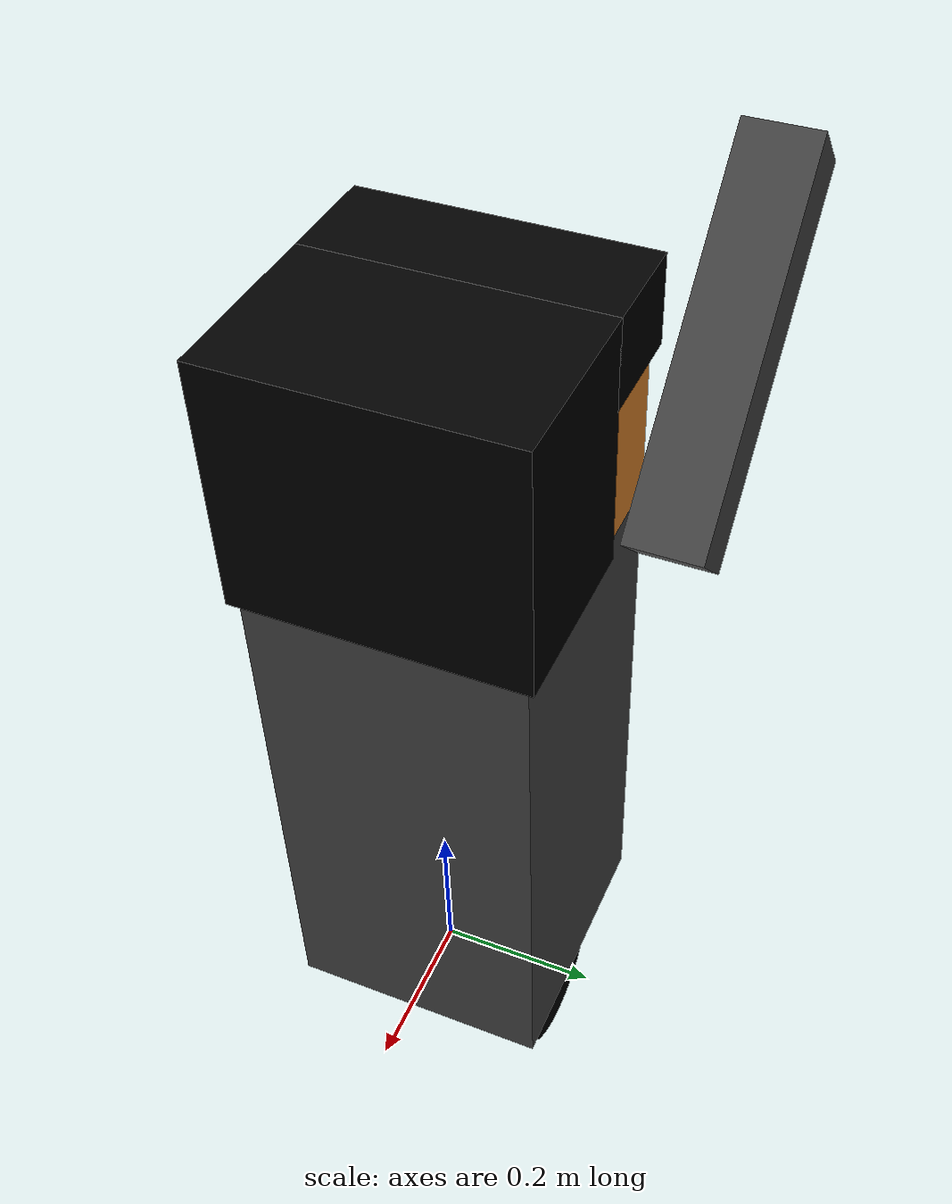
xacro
<?xml version="1.0" ?>
<robot name='robot' xmlns:xacro="http://ros.org/wiki/xacro">

    <xacro:include filename="$(find robot_description)/urdf/gazebo.urdf.xacro" />
    <xacro:property name="chassis_length" value="0.335"/>
    <xacro:property name="chassis_width" value="0.335"/>
    <xacro:property name="chassis_height" value="0.7"/>
    <xacro:property name="arm_length" value="0.1"/>
    <xacro:property name="arm_width" value="0.1"/>
    <xacro:property name="arm_height" value="0.5"/>
    <xacro:property name="moustache_length" value="0.03"/>
    <xacro:property name="moustache_width" value="0.04"/>
    <xacro:property name="moustache_height" value="0.03"/>
    <xacro:property name="head_height" value="0.3"/>
    <xacro:property name="wheel_radius" value="0.099"/>
    <xacro:property name="wheel_thickness" value="0.026"/>
    <xacro:property name="wheel_mass" value="0.5"/>
    <xacro:property name="wheel_offset_x" value="0.226"/>
    <xacro:property name="wheel_offset_y" value="0.1485"/>
    <xacro:property name="wheel_offset_z" value="0.03"/>
    <xacro:property name="caster_wheel_radius" value="0.04"/>
    <xacro:property name="caster_wheel_mass" value="0.3"/>
    <xacro:property name="caster_wheel_offset_x" value="0.075"/>
    <xacro:property name="caster_wheel_offset_z" value="${wheel_offset_z - wheel_radius + caster_wheel_radius}"/>
    <xacro:property name="mass" value="1.0"/>

    <material name="white">
        <color rgba="1 1 1 1" />
    </material>

    <material name="orange">
        <color rgba="1 0.6 0.2 1"/>
    </material>

    <material name="blue">
        <color rgba="0.2 0.2 1 1"/>
    </material>

    <material name="gray">
        <color rgba="0.3 0.3 0.3 1"/>
    </material>

    <material name="black">
        <color rgba="0 0 0 1"/>
    </material>

    <material name="red">
        <color rgba="1 0 0 1"/>
    </material>

    <link name="base_link">
    </link>

    <link name="base_footprint">
    </link>

    <joint name="base_footprint_joint" type="fixed">
        <parent link="base_link"/>
        <child link="base_footprint"/>
        <origin xyz="0 0 ${-chassis_width/2}" rpy="0 0 0"/>
    </joint>

    <joint name="chassis_joint" type="fixed">
        <parent link="base_link"/>
        <child link="chassis"/>
        <origin xyz="${-wheel_offset_x} 0 ${-wheel_offset_z}"/>
    </joint>

    <link name='chassis'>

    <inertial>
        <origin xyz="${chassis_length/2} 0 ${chassis_height/2}" rpy="0 0 0"/>
        <mass value="${mass/2}" />
        <inertia ixx="${(1/12) * mass * (chassis_width*chassis_width+chassis_height*chassis_height)}" ixy="0.0" ixz="0.0"
                 iyy="${(1/12) * mass * (chassis_length*chassis_length+chassis_height*chassis_height)}" iyz="0.0"
                 izz="${(1/12) * mass * (chassis_length*chassis_length+chassis_width*chassis_width)}" />
    </inertial>
    <visual>
        <origin xyz="${chassis_length/2} 0 ${chassis_height/2}"/>
        <geometry>
            <box size="${chassis_length} ${chassis_width} ${chassis_height}"/>
        </geometry>
        <material name="gray"/>
    </visual>
    <collision>
        <origin xyz="${chassis_length/2} 0 ${chassis_height/2}"/>
        <geometry>
            <box size="${chassis_length} ${chassis_width} ${chassis_height}"/>
        </geometry>
    </collision>
    </link>

    <gazebo reference="chassis">
        <material>Gazebo/Gray</material>
    </gazebo>

      <joint name="head_join" type="fixed">
        <parent link="base_link"/>
        <child link="head"/>
        <origin xyz="${-wheel_offset_x} 0 ${-wheel_offset_z+chassis_height}"/>
    </joint>

    <link name='head'>

    <inertial>
        <origin xyz="${chassis_length/2} 0 ${chassis_height/2}" rpy="0 0 0"/>
        <mass value="0.1" />
        <inertia ixx="${(1/12) * mass * (chassis_width*chassis_width+head_height*head_height)}" ixy="0.0" ixz="0.0"
                 iyy="${(1/12) * mass * (chassis_length*chassis_length+head_height*head_height)}" iyz="0.0"
                 izz="${(1/12) * mass * (chassis_length*chassis_length+chassis_width*chassis_width)}" />
    </inertial>
    <visual>
        <origin xyz="${chassis_length/2} 0 ${head_height/2}"/>
        <geometry>
            <box size="${chassis_length} ${chassis_width} ${head_height}"/>
        </geometry>
        <material name="orange"/>
    </visual>
    <collision>
        <origin xyz="${chassis_length/2} 0 ${head_height/2}"/>
        <geometry>
            <box size="${chassis_length} ${chassis_width} ${head_height}"/>
        </geometry>
    </collision>
    </link>

    <gazebo reference="head">
        <material>Gazebo/Orange</material>
    </gazebo>

    <joint name="moustache_join" type="fixed">
        <parent link="base_link"/>
        <child link="moustache"/>
        <origin xyz="${-wheel_offset_x-0.01} 0 ${-wheel_offset_z+chassis_height + 0.1}"/>
    </joint>

    <link name='moustache'>

    <visual>
        <origin xyz="${moustache_length/2} 0 ${moustache_height/2}"/>
        <geometry>
            <box size="${moustache_length} ${moustache_width} ${moustache_height}"/>
        </geometry>
        <material name="black"/>
    </visual>
    <collision>
        <origin xyz="${moustache_length/2} 0 ${moustache_height/2}"/>
        <geometry>
            <box size="${moustache_length} ${moustache_width} ${moustache_height}"/>
        </geometry>
    </collision>
    </link>

    <gazebo reference="moustache">
        <material>Gazebo/Blak</material>
    </gazebo>

    <joint name="hair_back_join" type="fixed">
        <parent link="base_link"/>
        <child link="hair_back"/>
        <origin xyz="${-wheel_offset_x+0.01} 0 ${-wheel_offset_z+chassis_height}"/>
    </joint>

    <link name='hair_back'>

    <visual>
        <origin xyz="${chassis_length*2/3} 0 ${head_height/2}"/>
        <geometry>
            <box size="${chassis_length*2/3} ${chassis_width+0.02} ${head_height+0.01}"/>
        </geometry>
        <material name="black"/>
    </visual>
    <collision>
        <origin xyz="${chassis_length*2/3} 0 ${head_height/2}"/>
        <geometry>
            <box size="${chassis_length*2/3} ${chassis_width+0.02} ${head_height+0.01}"/>
        </geometry>
    </collision>
    </link>

    <gazebo reference="hair_back">
        <material>Gazebo/Blak</material>
    </gazebo>

    <joint name="hair_top_join" type="fixed">
        <parent link="base_link"/>
        <child link="hair_top"/>
        <origin xyz="${-wheel_offset_x-0.063} 0 ${-wheel_offset_z+chassis_height+head_height/3}"/>
    </joint>

    <link name='hair_top'>

    <visual>
        <origin xyz="${(chassis_length/3)+0.01} 0 ${head_height/2}"/>
        <geometry>
            <box size="${(chassis_length/3)+0.02} ${chassis_width+0.02} ${head_height/3+0.01}"/>
        </geometry>
        <material name="black"/>
    </visual>
    <collision>
        <origin xyz="${(chassis_length/3)+0.01} 0 ${head_height/3}"/>
        <geometry>
            <box size="${(chassis_length/3)+0.02} ${chassis_width+0.02} ${head_height/3+0.01}"/>
        </geometry>
    </collision>
    </link>

    <gazebo reference="head_top">
        <material>Gazebo/Blak</material>
    </gazebo>

    <joint name="arm_joint" type="fixed">
        <parent link="base_link"/>
        <child link="arm"/>
        <origin xyz="${-wheel_offset_x} ${(chassis_width+arm_width)/2} ${-wheel_offset_z+(chassis_height)-arm_width}" rpy="0 ${-pi/4} 0" />
    </joint>

    <link name='arm'>

        <visual>
            <origin xyz="${arm_length/2} 0 ${arm_height/2}"/>
            <geometry>
                <box size="${arm_length} ${arm_width} ${arm_height}"/>
            </geometry>
            <material name="gray"/>
        </visual>
        <collision>
            <origin xyz="${arm_length/2} 0 ${arm_height/2}"/>
            <geometry>
                <box size="${arm_length} ${arm_width} ${arm_height}"/>
            </geometry>
        </collision>
    </link>

    <joint name="left_wheel_joint" type="continuous">
        <parent link="base_link"/>
        <child link="left_wheel"/>
        <origin xyz="0 ${wheel_offset_y} 0" rpy="-${pi/2} 0 0" />
        <axis xyz="0 0 1"/>
    </joint>

    <link name="left_wheel">
        <visual>
            <geometry>
                <cylinder radius="${wheel_radius}" length="${wheel_thickness}"/>
            </geometry>
            <material name="black"/>
        </visual>
        <collision>
            <geometry>
                <sphere radius="${wheel_radius}"/>
            </geometry>
        </collision>
        <inertial>
            <origin xyz="0 0 0" rpy="0 0 0"/>
            <mass value="${wheel_mass*3}" />
            <inertia ixx="${(1/12) * wheel_mass * (3*wheel_radius*wheel_radius + wheel_thickness*wheel_thickness)}" ixy="0.0" ixz="0.0"
                     iyy="${(1/12) * wheel_mass * (3*wheel_radius*wheel_radius + wheel_thickness*wheel_thickness)}" iyz="0.0"
                     izz="${(1/2) * wheel_mass * (wheel_radius*wheel_radius)}" />
        </inertial>
    </link>

    <gazebo reference="left_wheel">
        <material>Gazebo/Black</material>
    </gazebo>

    <joint name="right_wheel_joint" type="continuous">
        <parent link="base_link"/>
        <child link="right_wheel"/>
        <origin xyz="0 ${-wheel_offset_y} 0" rpy="${pi/2} 0 0" />
        <axis xyz="0 0 -1"/>
    </joint>

    <link name="right_wheel">
        <visual>
            <geometry>
                <cylinder radius="${wheel_radius}" length="${wheel_thickness}"/>
            </geometry>
            <material name="black"/>
        </visual>
        <collision>
            <geometry>
                <sphere radius="${wheel_radius}"/>
            </geometry>
        </collision>
        <inertial>
            <origin xyz="0 0 0" rpy="0 0 0"/>
            <mass value="${wheel_mass*3}" />
            <inertia ixx="${(1/12) * wheel_mass * (3*wheel_radius*wheel_radius + wheel_thickness*wheel_thickness)}" ixy="0.0" ixz="0.0"
                     iyy="${(1/12) * wheel_mass * (3*wheel_radius*wheel_radius + wheel_thickness*wheel_thickness)}" iyz="0.0"
                     izz="${(1/2) * wheel_mass * (wheel_radius*wheel_radius)}" />
        </inertial>
    </link>

    <gazebo reference="right_wheel">
        <material>Gazebo/Black</material>
    </gazebo>

    <joint name="caster_wheel_joint" type="fixed">
        <parent link="chassis"/>
        <child link="caster_wheel"/>
        <origin xyz="${caster_wheel_offset_x} 0 ${caster_wheel_offset_z}"/>
    </joint>

    <link name="caster_wheel">
        <visual>
            <geometry>
                <sphere radius="${caster_wheel_radius}"/>
            </geometry>
            <material name="black"/>
        </visual>
        <collision>
            <geometry>
                <sphere radius="${caster_wheel_radius}"/>
            </geometry>
        </collision>
        <inertial>
            <origin xyz="0 0 0" rpy="0 0 0"/>
            <mass value="${caster_wheel_mass*3}" />
            <inertia ixx="${(2/5) * caster_wheel_mass * (caster_wheel_radius*caster_wheel_radius)}" ixy="0.0" ixz="0.0"
                     iyy="${(2/5) * caster_wheel_mass * (caster_wheel_radius*caster_wheel_radius)}" iyz="0.0"
                     izz="${(2/5) * caster_wheel_mass * (caster_wheel_radius*caster_wheel_radius)}" />
        </inertial>
    </link>

    <gazebo reference="caster_wheel">
        <material>Gazebo/Black</material>
        <mu1 value="0.001"/>
        <mu2 value="0.001"/>
    </gazebo>

</robot>
